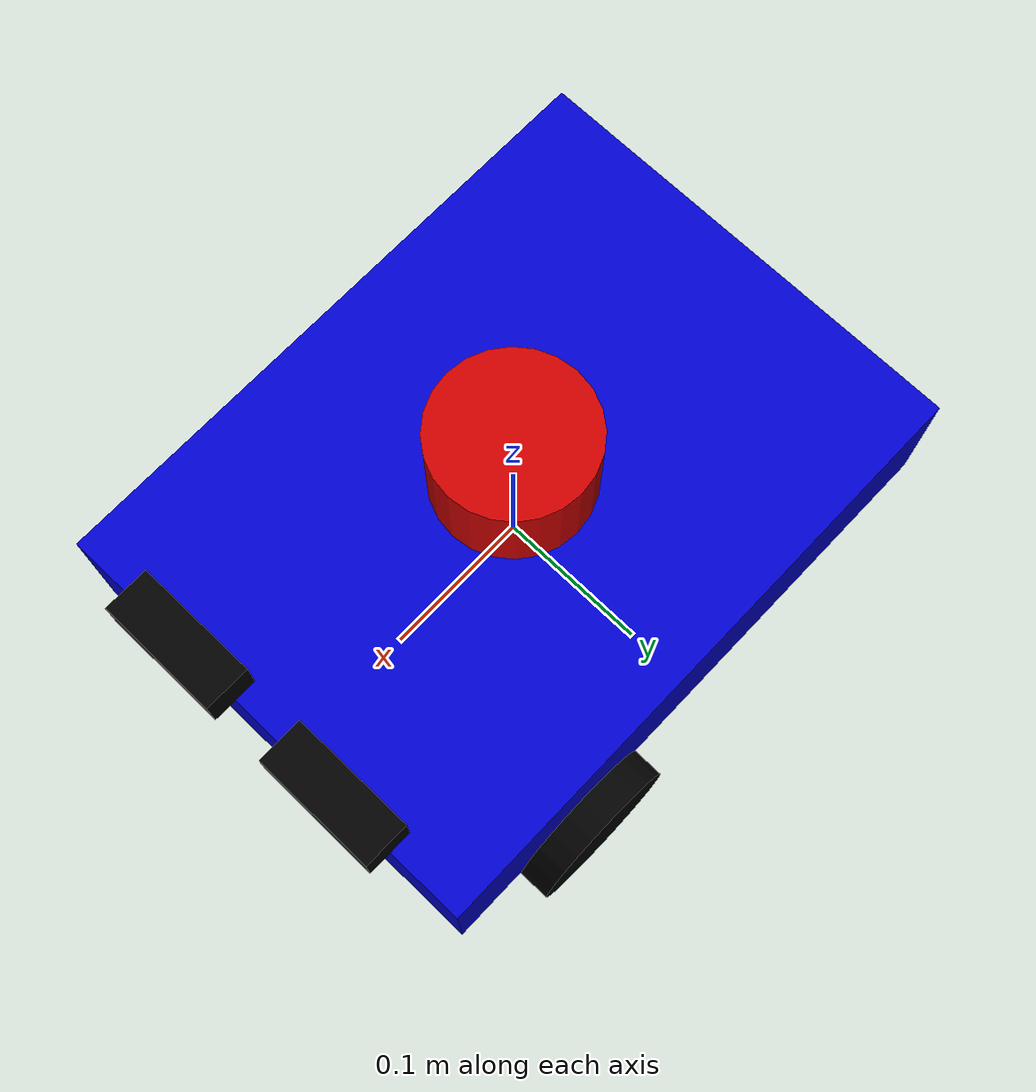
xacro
<?xml version="1.0"?>
<robot xmlns:xacro="http://www.ros.org/wiki/xacro" name="simple_robot">

  <!-- Define properties -->
  <xacro:property name="wheel_radius" value="0.05"/>
  <xacro:property name="wheel_width" value="0.04"/>
  <xacro:property name="wheel_separation" value="0.3"/>
  <xacro:property name="caster_radius" value="0.025"/>
  <xacro:property name="base_length" value="0.4"/>
  <xacro:property name="base_width" value="0.3"/>
  <xacro:property name="base_height" value="0.1"/>
  <xacro:property name="camera_baseline" value="0.12"/>

  <!-- Materials -->
  <material name="blue">
    <color rgba="0 0 0.8 1"/>
  </material>

  <material name="black">
    <color rgba="0 0 0 1"/>
  </material>

  <material name="white">
    <color rgba="1 1 1 1"/>
  </material>

  <material name="red">
    <color rgba="0.8 0 0 1"/>
  </material>

  <material name="green">
    <color rgba="0 0.8 0 1"/>
  </material>

  <!-- Base Link -->
  <link name="base_link">
    <visual>
      <geometry>
        <box size="${base_length} ${base_width} ${base_height}"/>
      </geometry>
      <material name="blue"/>
    </visual>
    <collision>
      <geometry>
        <box size="${base_length} ${base_width} ${base_height}"/>
      </geometry>
    </collision>
    <inertial>
      <mass value="5.0"/>
      <inertia ixx="0.0625" ixy="0.0" ixz="0.0" iyy="0.0854" iyz="0.0" izz="0.1229"/>
    </inertial>
  </link>

  <!-- Wheel Macro -->
  <xacro:macro name="wheel" params="prefix reflect">
    <link name="${prefix}_wheel">
      <visual>
        <geometry>
          <cylinder radius="${wheel_radius}" length="${wheel_width}"/>
        </geometry>
        <origin xyz="0 0 0" rpy="${pi/2} 0 0"/>
        <material name="black"/>
      </visual>
      <collision>
        <geometry>
          <cylinder radius="${wheel_radius}" length="${wheel_width}"/>
        </geometry>
        <origin xyz="0 0 0" rpy="${pi/2} 0 0"/>
      </collision>
      <inertial>
        <mass value="0.5"/>
        <inertia ixx="0.000625" ixy="0.0" ixz="0.0" iyy="0.000625" iyz="0.0" izz="0.00125"/>
      </inertial>
    </link>

    <joint name="${prefix}_wheel_joint" type="continuous">
      <parent link="base_link"/>
      <child link="${prefix}_wheel"/>
      <origin xyz="0.1 ${reflect * wheel_separation/2} ${-base_height/2 - wheel_radius + 0.04}" rpy="0 0 0"/>
      <axis xyz="0 1 0"/>
    </joint>

    <!-- Gazebo tags for wheel -->
    <gazebo reference="${prefix}_wheel">
      <material>Gazebo/Black</material>
      <mu1>1.0</mu1>
      <mu2>1.0</mu2>
      <kp>1000000.0</kp>
      <kd>100.0</kd>
      <minDepth>0.001</minDepth>
      <maxVel>1.0</maxVel>
    </gazebo>
  </xacro:macro>

  <!-- Create left and right wheels -->
  <xacro:wheel prefix="left" reflect="1"/>
  <xacro:wheel prefix="right" reflect="-1"/>

  <!-- Caster Wheel -->
  <link name="caster_wheel">
    <visual>
      <geometry>
        <sphere radius="${caster_radius}"/>
      </geometry>
      <material name="white"/>
    </visual>
    <collision>
      <geometry>
        <sphere radius="${caster_radius}"/>
      </geometry>
    </collision>
    <inertial>
      <mass value="0.1"/>
      <inertia ixx="0.0000625" ixy="0.0" ixz="0.0" iyy="0.0000625" iyz="0.0" izz="0.0000625"/>
    </inertial>
  </link>

  <joint name="caster_joint" type="fixed">
    <parent link="base_link"/>
    <child link="caster_wheel"/>
    <origin xyz="${-base_length/2 + caster_radius} 0 ${-base_height/2 - caster_radius/2}" rpy="0 0 0"/>
  </joint>

  <gazebo reference="caster_wheel">
    <material>Gazebo/White</material>
    <mu1>0.0</mu1>
    <mu2>0.0</mu2>
    <kp>1000000.0</kp>
    <kd>100.0</kd>
  </gazebo>

  <!-- IMU Link -->
  <link name="imu_link">
    <visual>
      <geometry>
        <box size="0.02 0.02 0.01"/>
      </geometry>
      <material name="green"/>
    </visual>
    <collision>
      <geometry>
        <box size="0.02 0.02 0.01"/>
      </geometry>
    </collision>
    <inertial>
      <mass value="0.01"/>
      <inertia ixx="0.000001" ixy="0.0" ixz="0.0" iyy="0.000001" iyz="0.0" izz="0.000001"/>
    </inertial>
  </link>

  <joint name="imu_joint" type="fixed">
    <parent link="base_link"/>
    <child link="imu_link"/>
    <origin xyz="0 0 0" rpy="0 0 0"/>
  </joint>

  <!-- Left Camera Link -->
  <link name="camera_left_link">
    <visual>
      <geometry>
        <box size="0.03 0.08 0.03"/>
      </geometry>
      <material name="black"/>
    </visual>
    <collision>
      <geometry>
        <box size="0.03 0.08 0.03"/>
      </geometry>
    </collision>
    <inertial>
      <mass value="0.1"/>
      <inertia ixx="0.00005917" ixy="0.0" ixz="0.0" iyy="0.00000842" iyz="0.0" izz="0.00005842"/>
    </inertial>
  </link>

  <joint name="camera_left_joint" type="fixed">
    <parent link="base_link"/>
    <child link="camera_left_link"/>
    <origin xyz="${base_length/2} ${camera_baseline/2} ${base_height/2 + 0.015}" rpy="0 0 0"/>
  </joint>

  <!-- Optical frame for left camera -->
  <link name="camera_left_optical_frame"/>

  <joint name="camera_left_optical_joint" type="fixed">
    <parent link="camera_left_link"/>
    <child link="camera_left_optical_frame"/>
    <origin xyz="0 0 0" rpy="${-pi/2} 0 ${-pi/2}"/>
  </joint>

  <!-- Right Camera Link -->
  <link name="camera_right_link">
    <visual>
      <geometry>
        <box size="0.03 0.08 0.03"/>
      </geometry>
      <material name="black"/>
    </visual>
    <collision>
      <geometry>
        <box size="0.03 0.08 0.03"/>
      </geometry>
    </collision>
    <inertial>
      <mass value="0.1"/>
      <inertia ixx="0.00005917" ixy="0.0" ixz="0.0" iyy="0.00000842" iyz="0.0" izz="0.00005842"/>
    </inertial>
  </link>

  <joint name="camera_right_joint" type="fixed">
    <parent link="base_link"/>
    <child link="camera_right_link"/>
    <origin xyz="${base_length/2} ${-camera_baseline/2} ${base_height/2 + 0.015}" rpy="0 0 0"/>
  </joint>

  <!-- Optical frame for right camera -->
  <link name="camera_right_optical_frame"/>

  <joint name="camera_right_optical_joint" type="fixed">
    <parent link="camera_right_link"/>
    <child link="camera_right_optical_frame"/>
    <origin xyz="0 0 0" rpy="${-pi/2} 0 ${-pi/2}"/>
  </joint>

  <!-- 3D LiDAR Link -->
  <link name="lidar_link">
    <visual>
      <geometry>
        <cylinder radius="0.05" length="0.07"/>
      </geometry>
      <material name="red"/>
    </visual>
    <collision>
      <geometry>
        <cylinder radius="0.05" length="0.07"/>
      </geometry>
    </collision>
    <inertial>
      <mass value="0.3"/>
      <inertia ixx="0.000196" ixy="0.0" ixz="0.0" iyy="0.000196" iyz="0.0" izz="0.000375"/>
    </inertial>
  </link>

  <joint name="lidar_joint" type="fixed">
    <parent link="base_link"/>
    <child link="lidar_link"/>
    <origin xyz="0 0 ${base_height/2 + 0.035}" rpy="0 0 0"/>
  </joint>

  <gazebo reference="lidar_link">
    <material>Gazebo/Red</material>
  </gazebo>

  <!-- Gazebo Differential Drive Plugin -->
  <gazebo>
    <plugin filename="libignition-gazebo-diff-drive-system.so" name="ignition::gazebo::systems::DiffDrive">
      <left_joint>left_wheel_joint</left_joint>
      <right_joint>right_wheel_joint</right_joint>
      <wheel_separation>${wheel_separation}</wheel_separation>
      <wheel_radius>${wheel_radius}</wheel_radius>
      <odom_publish_frequency>50</odom_publish_frequency>
      <topic>cmd_vel</topic>
      <odom_topic>odom</odom_topic>
      <tf_topic>tf</tf_topic>
      <frame_id>odom</frame_id>
      <child_frame_id>base_footprint</child_frame_id>
    </plugin>
  </gazebo>

  <!-- Sensors System Plugin (REQUIRED for cameras and other sensors to work) -->
  <gazebo>
    <plugin filename="libignition-gazebo-sensors-system.so" name="ignition::gazebo::systems::Sensors">
      <render_engine>ogre2</render_engine>
    </plugin>
  </gazebo>

  <!-- IMU System Plugin (REQUIRED for IMU to work) -->
  <gazebo>
    <plugin filename="libignition-gazebo-imu-system.so" name="ignition::gazebo::systems::Imu">
    </plugin>
  </gazebo>

  <!-- Joint State Publisher Plugin -->
  <gazebo>
    <plugin filename="libignition-gazebo-joint-state-publisher-system.so"
            name="ignition::gazebo::systems::JointStatePublisher">
      <joint_name>left_wheel_joint</joint_name>
      <joint_name>right_wheel_joint</joint_name>
      <topic>joint_states</topic>
      <update_rate>50</update_rate>
    </plugin>
  </gazebo>

  <!-- IMU Sensor -->
  <gazebo reference="imu_link">
    <sensor name="imu_sensor" type="imu">
      <always_on>true</always_on>
      <update_rate>100</update_rate>
      <visualize>true</visualize>
      <topic>imu</topic>
      <imu>
        <angular_velocity>
          <x>
            <noise type="gaussian">
              <mean>0.0</mean>
              <stddev>2e-4</stddev>
              <bias_mean>0.0000075</bias_mean>
              <bias_stddev>0.0000008</bias_stddev>
            </noise>
          </x>
          <y>
            <noise type="gaussian">
              <mean>0.0</mean>
              <stddev>2e-4</stddev>
              <bias_mean>0.0000075</bias_mean>
              <bias_stddev>0.0000008</bias_stddev>
            </noise>
          </y>
          <z>
            <noise type="gaussian">
              <mean>0.0</mean>
              <stddev>2e-4</stddev>
              <bias_mean>0.0000075</bias_mean>
              <bias_stddev>0.0000008</bias_stddev>
            </noise>
          </z>
        </angular_velocity>
        <linear_acceleration>
          <x>
            <noise type="gaussian">
              <mean>0.0</mean>
              <stddev>1.7e-2</stddev>
              <bias_mean>0.1</bias_mean>
              <bias_stddev>0.001</bias_stddev>
            </noise>
          </x>
          <y>
            <noise type="gaussian">
              <mean>0.0</mean>
              <stddev>1.7e-2</stddev>
              <bias_mean>0.1</bias_mean>
              <bias_stddev>0.001</bias_stddev>
            </noise>
          </y>
          <z>
            <noise type="gaussian">
              <mean>0.0</mean>
              <stddev>1.7e-2</stddev>
              <bias_mean>0.1</bias_mean>
              <bias_stddev>0.001</bias_stddev>
            </noise>
          </z>
        </linear_acceleration>
      </imu>
    </sensor>
  </gazebo>

  <!-- Left Camera Sensor -->
  <gazebo reference="camera_left_link">
    <sensor name="camera_left" type="camera">
      <pose>0 0 0 0 0 0</pose>
      <always_on>true</always_on>
      <update_rate>30</update_rate>
      <visualize>true</visualize>
      <topic>camera/left/image_raw</topic>
      <ignition_frame_id>camera_left_optical_frame</ignition_frame_id>
      <camera>
        <horizontal_fov>1.047</horizontal_fov>
        <image>
          <width>640</width>
          <height>480</height>
          <format>R8G8B8</format>
        </image>
        <clip>
          <near>0.1</near>
          <far>100</far>
        </clip>
        <noise>
          <type>gaussian</type>
          <mean>0.0</mean>
          <stddev>0.007</stddev>
        </noise>
      </camera>
    </sensor>
  </gazebo>

  <!-- Right Camera Sensor -->
  <gazebo reference="camera_right_link">
    <sensor name="camera_right" type="camera">
      <pose>0 0 0 0 0 0</pose>
      <always_on>true</always_on>
      <update_rate>30</update_rate>
      <visualize>true</visualize>
      <topic>camera/right/image_raw</topic>
      <ignition_frame_id>camera_right_optical_frame</ignition_frame_id>
      <camera>
        <horizontal_fov>1.047</horizontal_fov>
        <image>
          <width>640</width>
          <height>480</height>
          <format>R8G8B8</format>
        </image>
        <clip>
          <near>0.1</near>
          <far>100</far>
        </clip>
        <noise>
          <type>gaussian</type>
          <mean>0.0</mean>
          <stddev>0.007</stddev>
        </noise>
      </camera>
    </sensor>
  </gazebo>

  <!-- 3D LiDAR Sensor -->
  <gazebo reference="lidar_link">
    <sensor name="lidar_3d" type="gpu_lidar">
      <pose>0 0 0 0 0 0</pose>
      <always_on>true</always_on>
      <update_rate>10</update_rate>
      <visualize>true</visualize>
      <topic>lidar</topic>
      <ignition_frame_id>lidar_link</ignition_frame_id>
      <lidar>
        <scan>
          <horizontal>
            <samples>640</samples>
            <resolution>1</resolution>
            <min_angle>-1.5708</min_angle>
            <max_angle>1.5708</max_angle>
          </horizontal>
          <vertical>
            <samples>16</samples>
            <resolution>1</resolution>
            <min_angle>-0.2617994</min_angle>
            <max_angle>0.2617994</max_angle>
          </vertical>
        </scan>
        <range>
          <min>0.08</min>
          <max>10.0</max>
          <resolution>0.01</resolution>
        </range>
        <noise>
          <type>gaussian</type>
          <mean>0.0</mean>
          <stddev>0.01</stddev>
        </noise>
      </lidar>
    </sensor>
  </gazebo>

   <!-- Pose Publisher Plugin (for ground truth) -->
  <gazebo>
    <plugin filename="libignition-gazebo-pose-publisher-system.so"
            name="ignition::gazebo::systems::PosePublisher">
      <publish_link_pose>false</publish_link_pose>
      <publish_model_pose>true</publish_model_pose>
      <publish_nested_model_pose>false</publish_nested_model_pose>
      <update_frequency>50</update_frequency>
    </plugin>
  </gazebo>

  <!-- Base Footprint (for navigation) -->
  <link name="base_footprint"/>

  <joint name="base_footprint_joint" type="fixed">
    <parent link="base_footprint"/>
    <child link="base_link"/>
    <origin xyz="0 0 ${wheel_radius}" rpy="0 0 0"/>
  </joint>

  <!-- Gazebo Ground Truth (Pose Publisher) Plugin -->
  <gazebo>
    <plugin filename="libignition-gazebo-pose-publisher-system.so"
            name="ignition::gazebo::systems::PosePublisher">
      <publish_link_pose>false</publish_link_pose>
      <publish_collision_pose>false</publish_collision_pose>
      <publish_visual_pose>false</publish_visual_pose>
      <publish_nested_model_pose>true</publish_nested_model_pose>
      <publish_model_pose>true</publish_model_pose>
      <use_pose_vector_msg>true</use_pose_vector_msg>
      <static_update_frequency>50</static_update_frequency>
    </plugin>
  </gazebo>

</robot>
